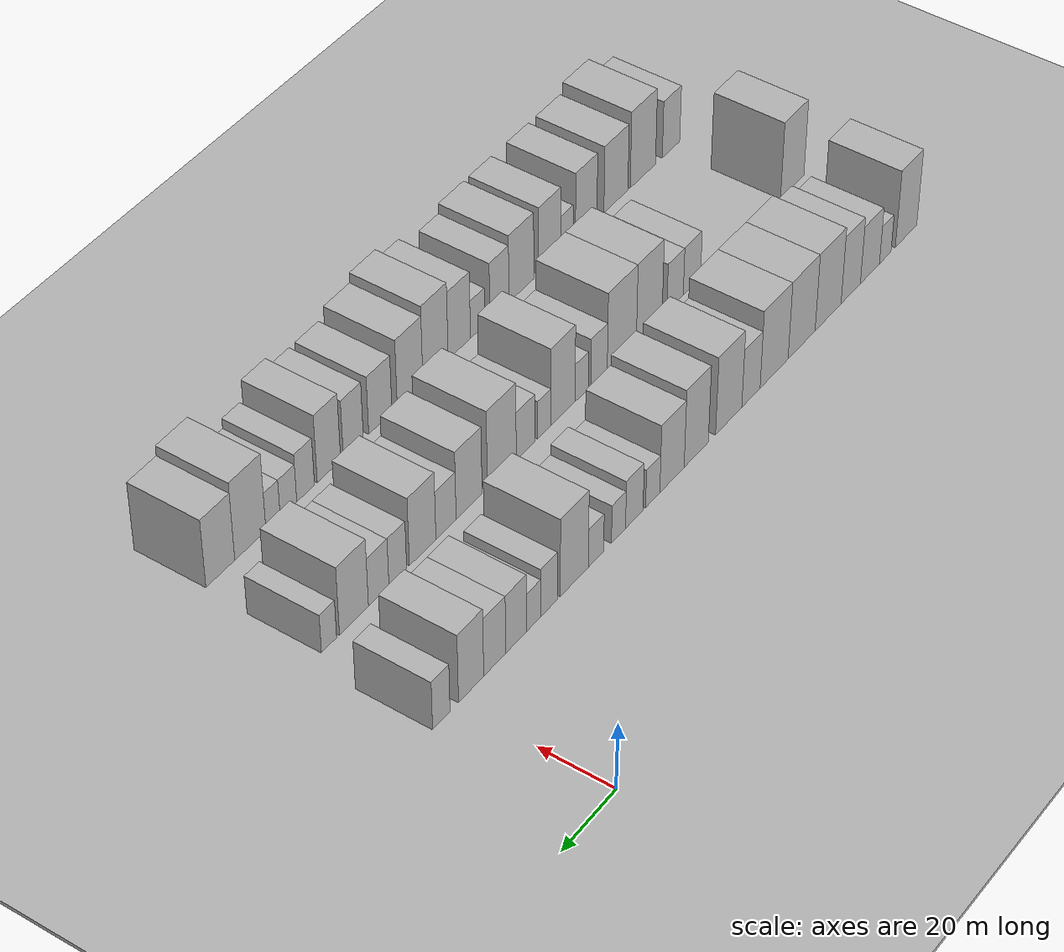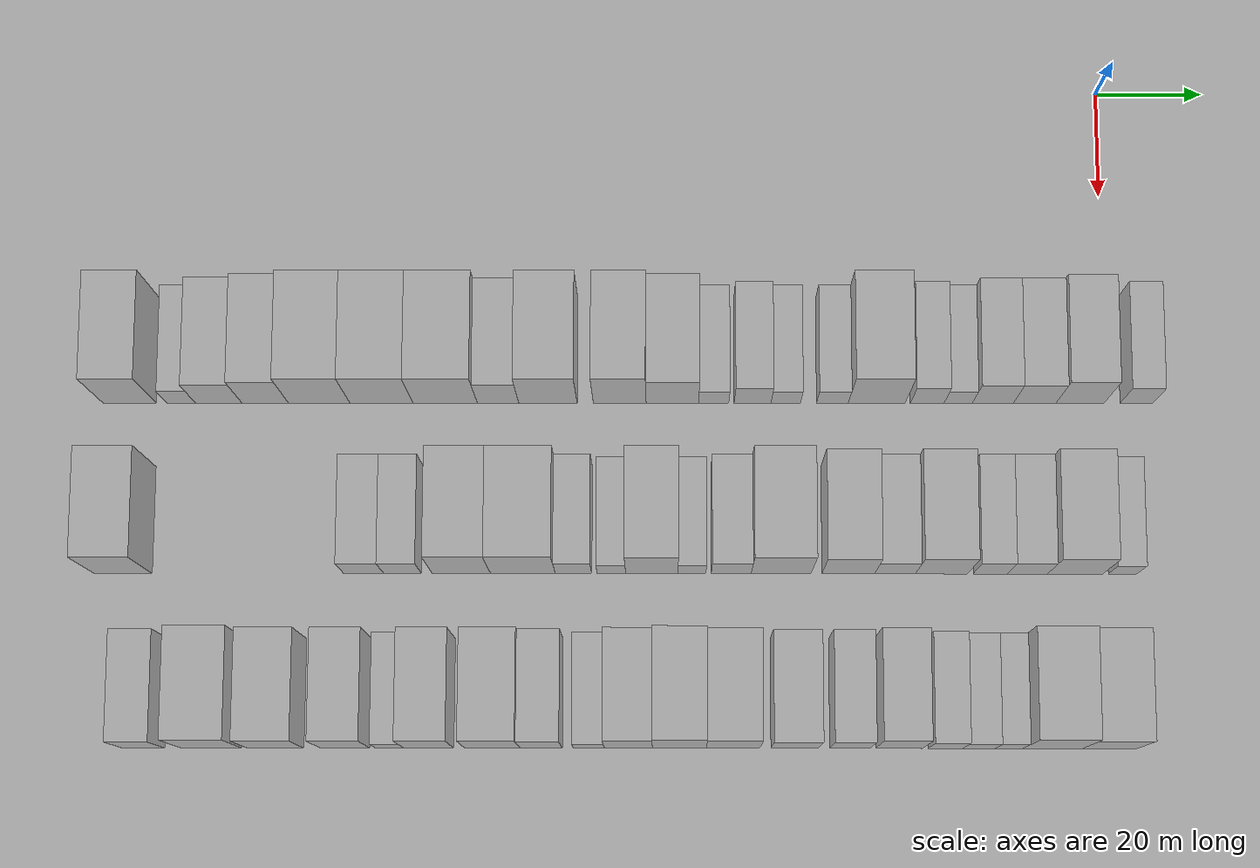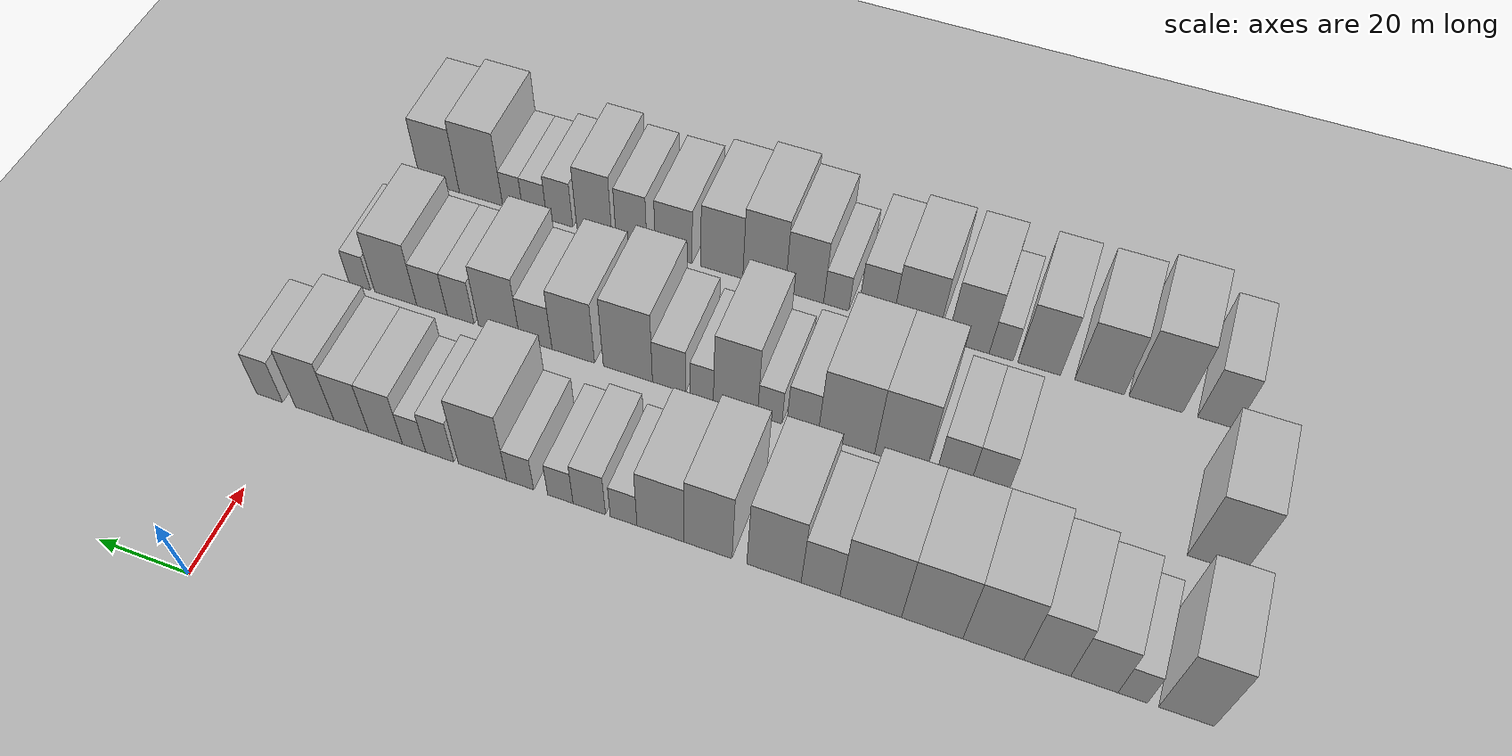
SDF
<sdf version="1.6">
 <world name="default">
  <include><name>ground_plane_1</name><uri>model://HANNAS_ground_plane</uri></include>
  <include>
   <name>ground_plane_2</name>
   <uri>model://HANNAS_ground_plane</uri>
   <pose>100 0 0  0 0 0</pose>
  </include>
  <model name="building_20">
   <static>1</static>
   <pose>50.0000 -182.1305 0 0.000000 0.000000 0.000000</pose>
   <link name="link">
    <pose>0 0 12.00 0 0 0</pose>
    <collision name="collision"><geometry><box><size>20.0000 9.9312 24.0000</size></box></geometry></collision>
    <visual name="visual">
     <cast_shadows>0</cast_shadows>
     <geometry><box><size>20.0000 9.9312 24.0000</size></box></geometry>
     <material>
      <script>
       <uri>model://HANNAS_wall/materials/scripts</uri>
       <uri>model://HANNAS_wall/materials/textures</uri>
       <name>vrc/HANNAS_wall</name>
      </script>
     </material>
    </visual>
   </link>
  </model>
  <model name="building_21">
   <static>1</static>
   <pose>50.0000 -172.4947 0 0.000000 0.000000 0.000000</pose>
   <link name="link">
    <pose>0 0 6.00 0 0 0</pose>
    <collision name="collision"><geometry><box><size>20.0000 5.3402 12.0000</size></box></geometry></collision>
    <visual name="visual">
     <cast_shadows>0</cast_shadows>
     <geometry><box><size>20.0000 5.3402 12.0000</size></box></geometry>
     <material>
      <script>
       <uri>model://HANNAS_wall/materials/scripts</uri>
       <uri>model://HANNAS_wall/materials/textures</uri>
       <name>vrc/HANNAS_wall</name>
      </script>
     </material>
    </visual>
   </link>
  </model>
  <model name="building_22">
   <static>1</static>
   <pose>50.0000 -165.4881 0 0.000000 0.000000 0.000000</pose>
   <link name="link">
    <pose>0 0 9.00 0 0 0</pose>
    <collision name="collision"><geometry><box><size>20.0000 8.6730 18.0000</size></box></geometry></collision>
    <visual name="visual">
     <cast_shadows>0</cast_shadows>
     <geometry><box><size>20.0000 8.6730 18.0000</size></box></geometry>
     <material>
      <script>
       <uri>model://HANNAS_wall/materials/scripts</uri>
       <uri>model://HANNAS_wall/materials/textures</uri>
       <name>vrc/HANNAS_wall</name>
      </script>
     </material>
    </visual>
   </link>
  </model>
  <model name="building_23">
   <static>1</static>
   <pose>50.0000 -156.8079 0 0.000000 0.000000 0.000000</pose>
   <link name="link">
    <pose>0 0 10.50 0 0 0</pose>
    <collision name="collision"><geometry><box><size>20.0000 8.6874 21.0000</size></box></geometry></collision>
    <visual name="visual">
     <cast_shadows>0</cast_shadows>
     <geometry><box><size>20.0000 8.6874 21.0000</size></box></geometry>
     <material>
      <script>
       <uri>model://HANNAS_wall/materials/scripts</uri>
       <uri>model://HANNAS_wall/materials/textures</uri>
       <name>vrc/HANNAS_wall</name>
      </script>
     </material>
    </visual>
   </link>
  </model>
  <model name="building_24">
   <static>1</static>
   <pose>50.0000 -146.7155 0 0.000000 0.000000 0.000000</pose>
   <link name="link">
    <pose>0 0 12.00 0 0 0</pose>
    <collision name="collision"><geometry><box><size>20.0000 11.4976 24.0000</size></box></geometry></collision>
    <visual name="visual">
     <cast_shadows>0</cast_shadows>
     <geometry><box><size>20.0000 11.4976 24.0000</size></box></geometry>
     <material>
      <script>
       <uri>model://HANNAS_wall/materials/scripts</uri>
       <uri>model://HANNAS_wall/materials/textures</uri>
       <name>vrc/HANNAS_wall</name>
      </script>
     </material>
    </visual>
   </link>
  </model>
  <model name="building_25">
   <static>1</static>
   <pose>50.0000 -135.0739 0 0.000000 0.000000 0.000000</pose>
   <link name="link">
    <pose>0 0 12.00 0 0 0</pose>
    <collision name="collision"><geometry><box><size>20.0000 11.7856 24.0000</size></box></geometry></collision>
    <visual name="visual">
     <cast_shadows>0</cast_shadows>
     <geometry><box><size>20.0000 11.7856 24.0000</size></box></geometry>
     <material>
      <script>
       <uri>model://HANNAS_wall/materials/scripts</uri>
       <uri>model://HANNAS_wall/materials/textures</uri>
       <name>vrc/HANNAS_wall</name>
      </script>
     </material>
    </visual>
   </link>
  </model>
  <model name="building_26">
   <static>1</static>
   <pose>50.0000 -123.1845 0 0.000000 0.000000 0.000000</pose>
   <link name="link">
    <pose>0 0 12.00 0 0 0</pose>
    <collision name="collision"><geometry><box><size>20.0000 11.9932 24.0000</size></box></geometry></collision>
    <visual name="visual">
     <cast_shadows>0</cast_shadows>
     <geometry><box><size>20.0000 11.9932 24.0000</size></box></geometry>
     <material>
      <script>
       <uri>model://HANNAS_wall/materials/scripts</uri>
       <uri>model://HANNAS_wall/materials/textures</uri>
       <name>vrc/HANNAS_wall</name>
      </script>
     </material>
    </visual>
   </link>
  </model>
  <model name="building_27">
   <static>1</static>
   <pose>50.0000 -113.3230 0 0.000000 0.000000 0.000000</pose>
   <link name="link">
    <pose>0 0 9.00 0 0 0</pose>
    <collision name="collision"><geometry><box><size>20.0000 7.7298 18.0000</size></box></geometry></collision>
    <visual name="visual">
     <cast_shadows>0</cast_shadows>
     <geometry><box><size>20.0000 7.7298 18.0000</size></box></geometry>
     <material>
      <script>
       <uri>model://HANNAS_wall/materials/scripts</uri>
       <uri>model://HANNAS_wall/materials/textures</uri>
       <name>vrc/HANNAS_wall</name>
      </script>
     </material>
    </visual>
   </link>
  </model>
  <model name="building_28">
   <static>1</static>
   <pose>50.0000 -104.0030 0 0.000000 0.000000 0.000000</pose>
   <link name="link">
    <pose>0 0 12.00 0 0 0</pose>
    <collision name="collision"><geometry><box><size>20.0000 10.9103 24.0000</size></box></geometry></collision>
    <visual name="visual">
     <cast_shadows>0</cast_shadows>
     <geometry><box><size>20.0000 10.9103 24.0000</size></box></geometry>
     <material>
      <script>
       <uri>model://HANNAS_wall/materials/scripts</uri>
       <uri>model://HANNAS_wall/materials/textures</uri>
       <name>vrc/HANNAS_wall</name>
      </script>
     </material>
    </visual>
   </link>
  </model>
  <model name="building_29">
   <static>1</static>
   <pose>50.0000 -90.6180 0 0.000000 0.000000 0.000000</pose>
   <link name="link">
    <pose>0 0 12.00 0 0 0</pose>
    <collision name="collision"><geometry><box><size>20.0000 9.8597 24.0000</size></box></geometry></collision>
    <visual name="visual">
     <cast_shadows>0</cast_shadows>
     <geometry><box><size>20.0000 9.8597 24.0000</size></box></geometry>
     <material>
      <script>
       <uri>model://HANNAS_wall/materials/scripts</uri>
       <uri>model://HANNAS_wall/materials/textures</uri>
       <name>vrc/HANNAS_wall</name>
      </script>
     </material>
    </visual>
   </link>
  </model>
  <model name="building_30">
   <static>1</static>
   <pose>50.0000 -80.7948 0 0.000000 0.000000 0.000000</pose>
   <link name="link">
    <pose>0 0 10.50 0 0 0</pose>
    <collision name="collision"><geometry><box><size>20.0000 9.7866 21.0000</size></box></geometry></collision>
    <visual name="visual">
     <cast_shadows>0</cast_shadows>
     <geometry><box><size>20.0000 9.7866 21.0000</size></box></geometry>
     <material>
      <script>
       <uri>model://HANNAS_wall/materials/scripts</uri>
       <uri>model://HANNAS_wall/materials/textures</uri>
       <name>vrc/HANNAS_wall</name>
      </script>
     </material>
    </visual>
   </link>
  </model>
  <model name="building_31">
   <static>1</static>
   <pose>50.0000 -73.0840 0 0.000000 0.000000 0.000000</pose>
   <link name="link">
    <pose>0 0 6.00 0 0 0</pose>
    <collision name="collision"><geometry><box><size>20.0000 5.6350 12.0000</size></box></geometry></collision>
    <visual name="visual">
     <cast_shadows>0</cast_shadows>
     <geometry><box><size>20.0000 5.6350 12.0000</size></box></geometry>
     <material>
      <script>
       <uri>model://HANNAS_wall/materials/scripts</uri>
       <uri>model://HANNAS_wall/materials/textures</uri>
       <name>vrc/HANNAS_wall</name>
      </script>
     </material>
    </visual>
   </link>
  </model>
  <model name="building_32">
   <static>1</static>
   <pose>50.0000 -65.8188 0 0.000000 0.000000 0.000000</pose>
   <link name="link">
    <pose>0 0 7.50 0 0 0</pose>
    <collision name="collision"><geometry><box><size>20.0000 6.8953 15.0000</size></box></geometry></collision>
    <visual name="visual">
     <cast_shadows>0</cast_shadows>
     <geometry><box><size>20.0000 6.8953 15.0000</size></box></geometry>
     <material>
      <script>
       <uri>model://HANNAS_wall/materials/scripts</uri>
       <uri>model://HANNAS_wall/materials/textures</uri>
       <name>vrc/HANNAS_wall</name>
      </script>
     </material>
    </visual>
   </link>
  </model>
  <model name="building_33">
   <static>1</static>
   <pose>50.0000 -59.6312 0 0.000000 0.000000 0.000000</pose>
   <link name="link">
    <pose>0 0 6.00 0 0 0</pose>
    <collision name="collision"><geometry><box><size>20.0000 5.4799 12.0000</size></box></geometry></collision>
    <visual name="visual">
     <cast_shadows>0</cast_shadows>
     <geometry><box><size>20.0000 5.4799 12.0000</size></box></geometry>
     <material>
      <script>
       <uri>model://HANNAS_wall/materials/scripts</uri>
       <uri>model://HANNAS_wall/materials/textures</uri>
       <name>vrc/HANNAS_wall</name>
      </script>
     </material>
    </visual>
   </link>
  </model>
  <model name="building_34">
   <static>1</static>
   <pose>50.0000 -50.9362 0 0.000000 0.000000 0.000000</pose>
   <link name="link">
    <pose>0 0 6.00 0 0 0</pose>
    <collision name="collision"><geometry><box><size>20.0000 5.9099 12.0000</size></box></geometry></collision>
    <visual name="visual">
     <cast_shadows>0</cast_shadows>
     <geometry><box><size>20.0000 5.9099 12.0000</size></box></geometry>
     <material>
      <script>
       <uri>model://HANNAS_wall/materials/scripts</uri>
       <uri>model://HANNAS_wall/materials/textures</uri>
       <name>vrc/HANNAS_wall</name>
      </script>
     </material>
    </visual>
   </link>
  </model>
  <model name="building_35">
   <static>1</static>
   <pose>50.0000 -42.6697 0 0.000000 0.000000 0.000000</pose>
   <link name="link">
    <pose>0 0 12.00 0 0 0</pose>
    <collision name="collision"><geometry><box><size>20.0000 10.6231 24.0000</size></box></geometry></collision>
    <visual name="visual">
     <cast_shadows>0</cast_shadows>
     <geometry><box><size>20.0000 10.6231 24.0000</size></box></geometry>
     <material>
      <script>
       <uri>model://HANNAS_wall/materials/scripts</uri>
       <uri>model://HANNAS_wall/materials/textures</uri>
       <name>vrc/HANNAS_wall</name>
      </script>
     </material>
    </visual>
   </link>
  </model>
  <model name="building_36">
   <static>1</static>
   <pose>50.0000 -33.2216 0 0.000000 0.000000 0.000000</pose>
   <link name="link">
    <pose>0 0 7.50 0 0 0</pose>
    <collision name="collision"><geometry><box><size>20.0000 6.2732 15.0000</size></box></geometry></collision>
    <visual name="visual">
     <cast_shadows>0</cast_shadows>
     <geometry><box><size>20.0000 6.2732 15.0000</size></box></geometry>
     <material>
      <script>
       <uri>model://HANNAS_wall/materials/scripts</uri>
       <uri>model://HANNAS_wall/materials/textures</uri>
       <name>vrc/HANNAS_wall</name>
      </script>
     </material>
    </visual>
   </link>
  </model>
  <model name="building_37">
   <static>1</static>
   <pose>50.0000 -27.4517 0 0.000000 0.000000 0.000000</pose>
   <link name="link">
    <pose>0 0 6.00 0 0 0</pose>
    <collision name="collision"><geometry><box><size>20.0000 5.2666 12.0000</size></box></geometry></collision>
    <visual name="visual">
     <cast_shadows>0</cast_shadows>
     <geometry><box><size>20.0000 5.2666 12.0000</size></box></geometry>
     <material>
      <script>
       <uri>model://HANNAS_wall/materials/scripts</uri>
       <uri>model://HANNAS_wall/materials/textures</uri>
       <name>vrc/HANNAS_wall</name>
      </script>
     </material>
    </visual>
   </link>
  </model>
  <model name="building_38">
   <static>1</static>
   <pose>50.0000 -20.9841 0 0.000000 0.000000 0.000000</pose>
   <link name="link">
    <pose>0 0 9.00 0 0 0</pose>
    <collision name="collision"><geometry><box><size>20.0000 7.6684 18.0000</size></box></geometry></collision>
    <visual name="visual">
     <cast_shadows>0</cast_shadows>
     <geometry><box><size>20.0000 7.6684 18.0000</size></box></geometry>
     <material>
      <script>
       <uri>model://HANNAS_wall/materials/scripts</uri>
       <uri>model://HANNAS_wall/materials/textures</uri>
       <name>vrc/HANNAS_wall</name>
      </script>
     </material>
    </visual>
   </link>
  </model>
  <model name="building_39">
   <static>1</static>
   <pose>50.0000 -13.1733 0 0.000000 0.000000 0.000000</pose>
   <link name="link">
    <pose>0 0 9.00 0 0 0</pose>
    <collision name="collision"><geometry><box><size>20.0000 7.9532 18.0000</size></box></geometry></collision>
    <visual name="visual">
     <cast_shadows>0</cast_shadows>
     <geometry><box><size>20.0000 7.9532 18.0000</size></box></geometry>
     <material>
      <script>
       <uri>model://HANNAS_wall/materials/scripts</uri>
       <uri>model://HANNAS_wall/materials/textures</uri>
       <name>vrc/HANNAS_wall</name>
      </script>
     </material>
    </visual>
   </link>
  </model>
  <model name="building_40">
   <static>1</static>
   <pose>50.0000 -4.7007 0 0.000000 0.000000 0.000000</pose>
   <link name="link">
    <pose>0 0 10.50 0 0 0</pose>
    <collision name="collision"><geometry><box><size>20.0000 8.9920 21.0000</size></box></geometry></collision>
    <visual name="visual">
     <cast_shadows>0</cast_shadows>
     <geometry><box><size>20.0000 8.9920 21.0000</size></box></geometry>
     <material>
      <script>
       <uri>model://HANNAS_wall/materials/scripts</uri>
       <uri>model://HANNAS_wall/materials/textures</uri>
       <name>vrc/HANNAS_wall</name>
      </script>
     </material>
    </visual>
   </link>
  </model>
  <model name="building_41">
   <static>1</static>
   <pose>50.0000 5.8593 0 0.000000 0.000000 0.000000</pose>
   <link name="link">
    <pose>0 0 7.50 0 0 0</pose>
    <collision name="collision"><geometry><box><size>20.0000 6.1280 15.0000</size></box></geometry></collision>
    <visual name="visual">
     <cast_shadows>0</cast_shadows>
     <geometry><box><size>20.0000 6.1280 15.0000</size></box></geometry>
     <material>
      <script>
       <uri>model://HANNAS_wall/materials/scripts</uri>
       <uri>model://HANNAS_wall/materials/textures</uri>
       <name>vrc/HANNAS_wall</name>
      </script>
     </material>
    </visual>
   </link>
  </model>
  <model name="building_103">
   <static>1</static>
   <pose>82.0000 -182.1213 0 0.000000 0.000000 0.000000</pose>
   <link name="link">
    <pose>0 0 12.00 0 0 0</pose>
    <collision name="collision"><geometry><box><size>20.0000 10.6720 24.0000</size></box></geometry></collision>
    <visual name="visual">
     <cast_shadows>0</cast_shadows>
     <geometry><box><size>20.0000 10.6720 24.0000</size></box></geometry>
     <material>
      <script>
       <uri>model://HANNAS_wall/materials/scripts</uri>
       <uri>model://HANNAS_wall/materials/textures</uri>
       <name>vrc/HANNAS_wall</name>
      </script>
     </material>
    </visual>
   </link>
  </model>
  <model name="building_104">
   <static>1</static>
   <pose>82.0000 -137.7175 0 0.000000 0.000000 0.000000</pose>
   <link name="link">
    <pose>0 0 7.50 0 0 0</pose>
    <collision name="collision"><geometry><box><size>20.0000 7.3786 15.0000</size></box></geometry></collision>
    <visual name="visual">
     <cast_shadows>0</cast_shadows>
     <geometry><box><size>20.0000 7.3786 15.0000</size></box></geometry>
     <material>
      <script>
       <uri>model://HANNAS_wall/materials/scripts</uri>
       <uri>model://HANNAS_wall/materials/textures</uri>
       <name>vrc/HANNAS_wall</name>
      </script>
     </material>
    </visual>
   </link>
  </model>
  <model name="building_105">
   <static>1</static>
   <pose>82.0000 -130.5434 0 0.000000 0.000000 0.000000</pose>
   <link name="link">
    <pose>0 0 7.50 0 0 0</pose>
    <collision name="collision"><geometry><box><size>20.0000 6.9695 15.0000</size></box></geometry></collision>
    <visual name="visual">
     <cast_shadows>0</cast_shadows>
     <geometry><box><size>20.0000 6.9695 15.0000</size></box></geometry>
     <material>
      <script>
       <uri>model://HANNAS_wall/materials/scripts</uri>
       <uri>model://HANNAS_wall/materials/textures</uri>
       <name>vrc/HANNAS_wall</name>
      </script>
     </material>
    </visual>
   </link>
  </model>
  <model name="building_106">
   <static>1</static>
   <pose>82.0000 -119.6819 0 0.000000 0.000000 0.000000</pose>
   <link name="link">
    <pose>0 0 12.00 0 0 0</pose>
    <collision name="collision"><geometry><box><size>20.0000 10.7537 24.0000</size></box></geometry></collision>
    <visual name="visual">
     <cast_shadows>0</cast_shadows>
     <geometry><box><size>20.0000 10.7537 24.0000</size></box></geometry>
     <material>
      <script>
       <uri>model://HANNAS_wall/materials/scripts</uri>
       <uri>model://HANNAS_wall/materials/textures</uri>
       <name>vrc/HANNAS_wall</name>
      </script>
     </material>
    </visual>
   </link>
  </model>
  <model name="building_107">
   <static>1</static>
   <pose>82.0000 -108.3235 0 0.000000 0.000000 0.000000</pose>
   <link name="link">
    <pose>0 0 12.00 0 0 0</pose>
    <collision name="collision"><geometry><box><size>20.0000 11.9630 24.0000</size></box></geometry></collision>
    <visual name="visual">
     <cast_shadows>0</cast_shadows>
     <geometry><box><size>20.0000 11.9630 24.0000</size></box></geometry>
     <material>
      <script>
       <uri>model://HANNAS_wall/materials/scripts</uri>
       <uri>model://HANNAS_wall/materials/textures</uri>
       <name>vrc/HANNAS_wall</name>
      </script>
     </material>
    </visual>
   </link>
  </model>
  <model name="building_108">
   <static>1</static>
   <pose>82.0000 -98.9969 0 0.000000 0.000000 0.000000</pose>
   <link name="link">
    <pose>0 0 7.50 0 0 0</pose>
    <collision name="collision"><geometry><box><size>20.0000 6.6903 15.0000</size></box></geometry></collision>
    <visual name="visual">
     <cast_shadows>0</cast_shadows>
     <geometry><box><size>20.0000 6.6903 15.0000</size></box></geometry>
     <material>
      <script>
       <uri>model://HANNAS_wall/materials/scripts</uri>
       <uri>model://HANNAS_wall/materials/textures</uri>
       <name>vrc/HANNAS_wall</name>
      </script>
     </material>
    </visual>
   </link>
  </model>
  <model name="building_109">
   <static>1</static>
   <pose>82.0000 -92.0117 0 0.000000 0.000000 0.000000</pose>
   <link name="link">
    <pose>0 0 6.00 0 0 0</pose>
    <collision name="collision"><geometry><box><size>20.0000 5.2801 12.0000</size></box></geometry></collision>
    <visual name="visual">
     <cast_shadows>0</cast_shadows>
     <geometry><box><size>20.0000 5.2801 12.0000</size></box></geometry>
     <material>
      <script>
       <uri>model://HANNAS_wall/materials/scripts</uri>
       <uri>model://HANNAS_wall/materials/textures</uri>
       <name>vrc/HANNAS_wall</name>
      </script>
     </material>
    </visual>
   </link>
  </model>
  <model name="building_110">
   <static>1</static>
   <pose>82.0000 -84.5606 0 0.000000 0.000000 0.000000</pose>
   <link name="link">
    <pose>0 0 12.00 0 0 0</pose>
    <collision name="collision"><geometry><box><size>20.0000 9.6222 24.0000</size></box></geometry></collision>
    <visual name="visual">
     <cast_shadows>0</cast_shadows>
     <geometry><box><size>20.0000 9.6222 24.0000</size></box></geometry>
     <material>
      <script>
       <uri>model://HANNAS_wall/materials/scripts</uri>
       <uri>model://HANNAS_wall/materials/textures</uri>
       <name>vrc/HANNAS_wall</name>
      </script>
     </material>
    </visual>
   </link>
  </model>
  <model name="building_111">
   <static>1</static>
   <pose>82.0000 -77.1818 0 0.000000 0.000000 0.000000</pose>
   <link name="link">
    <pose>0 0 6.00 0 0 0</pose>
    <collision name="collision"><geometry><box><size>20.0000 5.1354 12.0000</size></box></geometry></collision>
    <visual name="visual">
     <cast_shadows>0</cast_shadows>
     <geometry><box><size>20.0000 5.1354 12.0000</size></box></geometry>
     <material>
      <script>
       <uri>model://HANNAS_wall/materials/scripts</uri>
       <uri>model://HANNAS_wall/materials/textures</uri>
       <name>vrc/HANNAS_wall</name>
      </script>
     </material>
    </visual>
   </link>
  </model>
  <model name="building_112">
   <static>1</static>
   <pose>82.0000 -69.9337 0 0.000000 0.000000 0.000000</pose>
   <link name="link">
    <pose>0 0 7.50 0 0 0</pose>
    <collision name="collision"><geometry><box><size>20.0000 7.3607 15.0000</size></box></geometry></collision>
    <visual name="visual">
     <cast_shadows>0</cast_shadows>
     <geometry><box><size>20.0000 7.3607 15.0000</size></box></geometry>
     <material>
      <script>
       <uri>model://HANNAS_wall/materials/scripts</uri>
       <uri>model://HANNAS_wall/materials/textures</uri>
       <name>vrc/HANNAS_wall</name>
      </script>
     </material>
    </visual>
   </link>
  </model>
  <model name="building_113">
   <static>1</static>
   <pose>82.0000 -60.7211 0 0.000000 0.000000 0.000000</pose>
   <link name="link">
    <pose>0 0 12.00 0 0 0</pose>
    <collision name="collision"><geometry><box><size>20.0000 11.0645 24.0000</size></box></geometry></collision>
    <visual name="visual">
     <cast_shadows>0</cast_shadows>
     <geometry><box><size>20.0000 11.0645 24.0000</size></box></geometry>
     <material>
      <script>
       <uri>model://HANNAS_wall/materials/scripts</uri>
       <uri>model://HANNAS_wall/materials/textures</uri>
       <name>vrc/HANNAS_wall</name>
      </script>
     </material>
    </visual>
   </link>
  </model>
  <model name="building_114">
   <static>1</static>
   <pose>82.0000 -48.3150 0 0.000000 0.000000 0.000000</pose>
   <link name="link">
    <pose>0 0 10.50 0 0 0</pose>
    <collision name="collision"><geometry><box><size>20.0000 9.7477 21.0000</size></box></geometry></collision>
    <visual name="visual">
     <cast_shadows>0</cast_shadows>
     <geometry><box><size>20.0000 9.7477 21.0000</size></box></geometry>
     <material>
      <script>
       <uri>model://HANNAS_wall/materials/scripts</uri>
       <uri>model://HANNAS_wall/materials/textures</uri>
       <name>vrc/HANNAS_wall</name>
      </script>
     </material>
    </visual>
   </link>
  </model>
  <model name="building_115">
   <static>1</static>
   <pose>82.0000 -39.6951 0 0.000000 0.000000 0.000000</pose>
   <link name="link">
    <pose>0 0 7.50 0 0 0</pose>
    <collision name="collision"><geometry><box><size>20.0000 7.4921 15.0000</size></box></geometry></collision>
    <visual name="visual">
     <cast_shadows>0</cast_shadows>
     <geometry><box><size>20.0000 7.4921 15.0000</size></box></geometry>
     <material>
      <script>
       <uri>model://HANNAS_wall/materials/scripts</uri>
       <uri>model://HANNAS_wall/materials/textures</uri>
       <name>vrc/HANNAS_wall</name>
      </script>
     </material>
    </visual>
   </link>
  </model>
  <model name="building_116">
   <static>1</static>
   <pose>82.0000 -31.0987 0 0.000000 0.000000 0.000000</pose>
   <link name="link">
    <pose>0 0 10.50 0 0 0</pose>
    <collision name="collision"><geometry><box><size>20.0000 9.7007 21.0000</size></box></geometry></collision>
    <visual name="visual">
     <cast_shadows>0</cast_shadows>
     <geometry><box><size>20.0000 9.7007 21.0000</size></box></geometry>
     <material>
      <script>
       <uri>model://HANNAS_wall/materials/scripts</uri>
       <uri>model://HANNAS_wall/materials/textures</uri>
       <name>vrc/HANNAS_wall</name>
      </script>
     </material>
    </visual>
   </link>
  </model>
  <model name="building_117">
   <static>1</static>
   <pose>82.0000 -22.0468 0 0.000000 0.000000 0.000000</pose>
   <link name="link">
    <pose>0 0 7.50 0 0 0</pose>
    <collision name="collision"><geometry><box><size>20.0000 6.4032 15.0000</size></box></geometry></collision>
    <visual name="visual">
     <cast_shadows>0</cast_shadows>
     <geometry><box><size>20.0000 6.4032 15.0000</size></box></geometry>
     <material>
      <script>
       <uri>model://HANNAS_wall/materials/scripts</uri>
       <uri>model://HANNAS_wall/materials/textures</uri>
       <name>vrc/HANNAS_wall</name>
      </script>
     </material>
    </visual>
   </link>
  </model>
  <model name="building_118">
   <static>1</static>
   <pose>82.0000 -15.1858 0 0.000000 0.000000 0.000000</pose>
   <link name="link">
    <pose>0 0 7.50 0 0 0</pose>
    <collision name="collision"><geometry><box><size>20.0000 7.3188 15.0000</size></box></geometry></collision>
    <visual name="visual">
     <cast_shadows>0</cast_shadows>
     <geometry><box><size>20.0000 7.3188 15.0000</size></box></geometry>
     <material>
      <script>
       <uri>model://HANNAS_wall/materials/scripts</uri>
       <uri>model://HANNAS_wall/materials/textures</uri>
       <name>vrc/HANNAS_wall</name>
      </script>
     </material>
    </visual>
   </link>
  </model>
  <model name="building_119">
   <static>1</static>
   <pose>82.0000 -6.4182 0 0.000000 0.000000 0.000000</pose>
   <link name="link">
    <pose>0 0 10.50 0 0 0</pose>
    <collision name="collision"><geometry><box><size>20.0000 10.2162 21.0000</size></box></geometry></collision>
    <visual name="visual">
     <cast_shadows>0</cast_shadows>
     <geometry><box><size>20.0000 10.2162 21.0000</size></box></geometry>
     <material>
      <script>
       <uri>model://HANNAS_wall/materials/scripts</uri>
       <uri>model://HANNAS_wall/materials/textures</uri>
       <name>vrc/HANNAS_wall</name>
      </script>
     </material>
    </visual>
   </link>
  </model>
  <model name="building_120">
   <static>1</static>
   <pose>82.0000 2.3239 0 0.000000 0.000000 0.000000</pose>
   <link name="link">
    <pose>0 0 6.00 0 0 0</pose>
    <collision name="collision"><geometry><box><size>20.0000 5.2680 12.0000</size></box></geometry></collision>
    <visual name="visual">
     <cast_shadows>0</cast_shadows>
     <geometry><box><size>20.0000 5.2680 12.0000</size></box></geometry>
     <material>
      <script>
       <uri>model://HANNAS_wall/materials/scripts</uri>
       <uri>model://HANNAS_wall/materials/textures</uri>
       <name>vrc/HANNAS_wall</name>
      </script>
     </material>
    </visual>
   </link>
  </model>
  <model name="building_182">
   <static>1</static>
   <pose>114.0000 -177.2337 0 0.000000 0.000000 0.000000</pose>
   <link name="link">
    <pose>0 0 9.00 0 0 0</pose>
    <collision name="collision"><geometry><box><size>20.0000 7.7394 18.0000</size></box></geometry></collision>
    <visual name="visual">
     <cast_shadows>0</cast_shadows>
     <geometry><box><size>20.0000 7.7394 18.0000</size></box></geometry>
     <material>
      <script>
       <uri>model://HANNAS_wall/materials/scripts</uri>
       <uri>model://HANNAS_wall/materials/textures</uri>
       <name>vrc/HANNAS_wall</name>
      </script>
     </material>
    </visual>
   </link>
  </model>
  <model name="building_183">
   <static>1</static>
   <pose>114.0000 -164.8367 0 0.000000 0.000000 0.000000</pose>
   <link name="link">
    <pose>0 0 12.00 0 0 0</pose>
    <collision name="collision"><geometry><box><size>20.0000 11.0545 24.0000</size></box></geometry></collision>
    <visual name="visual">
     <cast_shadows>0</cast_shadows>
     <geometry><box><size>20.0000 11.0545 24.0000</size></box></geometry>
     <material>
      <script>
       <uri>model://HANNAS_wall/materials/scripts</uri>
       <uri>model://HANNAS_wall/materials/textures</uri>
       <name>vrc/HANNAS_wall</name>
      </script>
     </material>
    </visual>
   </link>
  </model>
  <model name="building_184">
   <static>1</static>
   <pose>114.0000 -153.1508 0 0.000000 0.000000 0.000000</pose>
   <link name="link">
    <pose>0 0 10.50 0 0 0</pose>
    <collision name="collision"><geometry><box><size>20.0000 10.3174 21.0000</size></box></geometry></collision>
    <visual name="visual">
     <cast_shadows>0</cast_shadows>
     <geometry><box><size>20.0000 10.3174 21.0000</size></box></geometry>
     <material>
      <script>
       <uri>model://HANNAS_wall/materials/scripts</uri>
       <uri>model://HANNAS_wall/materials/textures</uri>
       <name>vrc/HANNAS_wall</name>
      </script>
     </material>
    </visual>
   </link>
  </model>
  <model name="building_185">
   <static>1</static>
   <pose>114.0000 -140.4501 0 0.000000 0.000000 0.000000</pose>
   <link name="link">
    <pose>0 0 10.50 0 0 0</pose>
    <collision name="collision"><geometry><box><size>20.0000 9.0841 21.0000</size></box></geometry></collision>
    <visual name="visual">
     <cast_shadows>0</cast_shadows>
     <geometry><box><size>20.0000 9.0841 21.0000</size></box></geometry>
     <material>
      <script>
       <uri>model://HANNAS_wall/materials/scripts</uri>
       <uri>model://HANNAS_wall/materials/textures</uri>
       <name>vrc/HANNAS_wall</name>
      </script>
     </material>
    </visual>
   </link>
  </model>
  <model name="building_186">
   <static>1</static>
   <pose>114.0000 -132.3299 0 0.000000 0.000000 0.000000</pose>
   <link name="link">
    <pose>0 0 6.00 0 0 0</pose>
    <collision name="collision"><geometry><box><size>20.0000 5.1564 12.0000</size></box></geometry></collision>
    <visual name="visual">
     <cast_shadows>0</cast_shadows>
     <geometry><box><size>20.0000 5.1564 12.0000</size></box></geometry>
     <material>
      <script>
       <uri>model://HANNAS_wall/materials/scripts</uri>
       <uri>model://HANNAS_wall/materials/textures</uri>
       <name>vrc/HANNAS_wall</name>
      </script>
     </material>
    </visual>
   </link>
  </model>
  <model name="building_187">
   <static>1</static>
   <pose>114.0000 -125.1985 0 0.000000 0.000000 0.000000</pose>
   <link name="link">
    <pose>0 0 10.50 0 0 0</pose>
    <collision name="collision"><geometry><box><size>20.0000 9.1065 21.0000</size></box></geometry></collision>
    <visual name="visual">
     <cast_shadows>0</cast_shadows>
     <geometry><box><size>20.0000 9.1065 21.0000</size></box></geometry>
     <material>
      <script>
       <uri>model://HANNAS_wall/materials/scripts</uri>
       <uri>model://HANNAS_wall/materials/textures</uri>
       <name>vrc/HANNAS_wall</name>
      </script>
     </material>
    </visual>
   </link>
  </model>
  <model name="building_188">
   <static>1</static>
   <pose>114.0000 -113.5858 0 0.000000 0.000000 0.000000</pose>
   <link name="link">
    <pose>0 0 10.50 0 0 0</pose>
    <collision name="collision"><geometry><box><size>20.0000 10.1189 21.0000</size></box></geometry></collision>
    <visual name="visual">
     <cast_shadows>0</cast_shadows>
     <geometry><box><size>20.0000 10.1189 21.0000</size></box></geometry>
     <material>
      <script>
       <uri>model://HANNAS_wall/materials/scripts</uri>
       <uri>model://HANNAS_wall/materials/textures</uri>
       <name>vrc/HANNAS_wall</name>
      </script>
     </material>
    </visual>
   </link>
  </model>
  <model name="building_189">
   <static>1</static>
   <pose>114.0000 -104.6871 0 0.000000 0.000000 0.000000</pose>
   <link name="link">
    <pose>0 0 9.00 0 0 0</pose>
    <collision name="collision"><geometry><box><size>20.0000 7.6784 18.0000</size></box></geometry></collision>
    <visual name="visual">
     <cast_shadows>0</cast_shadows>
     <geometry><box><size>20.0000 7.6784 18.0000</size></box></geometry>
     <material>
      <script>
       <uri>model://HANNAS_wall/materials/scripts</uri>
       <uri>model://HANNAS_wall/materials/textures</uri>
       <name>vrc/HANNAS_wall</name>
      </script>
     </material>
    </visual>
   </link>
  </model>
  <model name="building_190">
   <static>1</static>
   <pose>114.0000 -96.0028 0 0.000000 0.000000 0.000000</pose>
   <link name="link">
    <pose>0 0 6.00 0 0 0</pose>
    <collision name="collision"><geometry><box><size>20.0000 5.6902 12.0000</size></box></geometry></collision>
    <visual name="visual">
     <cast_shadows>0</cast_shadows>
     <geometry><box><size>20.0000 5.6902 12.0000</size></box></geometry>
     <material>
      <script>
       <uri>model://HANNAS_wall/materials/scripts</uri>
       <uri>model://HANNAS_wall/materials/textures</uri>
       <name>vrc/HANNAS_wall</name>
      </script>
     </material>
    </visual>
   </link>
  </model>
  <model name="building_191">
   <static>1</static>
   <pose>114.0000 -88.7873 0 0.000000 0.000000 0.000000</pose>
   <link name="link">
    <pose>0 0 10.50 0 0 0</pose>
    <collision name="collision"><geometry><box><size>20.0000 8.7409 21.0000</size></box></geometry></collision>
    <visual name="visual">
     <cast_shadows>0</cast_shadows>
     <geometry><box><size>20.0000 8.7409 21.0000</size></box></geometry>
     <material>
      <script>
       <uri>model://HANNAS_wall/materials/scripts</uri>
       <uri>model://HANNAS_wall/materials/textures</uri>
       <name>vrc/HANNAS_wall</name>
      </script>
     </material>
    </visual>
   </link>
  </model>
  <model name="building_192">
   <static>1</static>
   <pose>114.0000 -79.5220 0 0.000000 0.000000 0.000000</pose>
   <link name="link">
    <pose>0 0 12.00 0 0 0</pose>
    <collision name="collision"><geometry><box><size>20.0000 9.7895 24.0000</size></box></geometry></collision>
    <visual name="visual">
     <cast_shadows>0</cast_shadows>
     <geometry><box><size>20.0000 9.7895 24.0000</size></box></geometry>
     <material>
      <script>
       <uri>model://HANNAS_wall/materials/scripts</uri>
       <uri>model://HANNAS_wall/materials/textures</uri>
       <name>vrc/HANNAS_wall</name>
      </script>
     </material>
    </visual>
   </link>
  </model>
  <model name="building_193">
   <static>1</static>
   <pose>114.0000 -69.7212 0 0.000000 0.000000 0.000000</pose>
   <link name="link">
    <pose>0 0 10.50 0 0 0</pose>
    <collision name="collision"><geometry><box><size>20.0000 9.8122 21.0000</size></box></geometry></collision>
    <visual name="visual">
     <cast_shadows>0</cast_shadows>
     <geometry><box><size>20.0000 9.8122 21.0000</size></box></geometry>
     <material>
      <script>
       <uri>model://HANNAS_wall/materials/scripts</uri>
       <uri>model://HANNAS_wall/materials/textures</uri>
       <name>vrc/HANNAS_wall</name>
      </script>
     </material>
    </visual>
   </link>
  </model>
  <model name="building_194">
   <static>1</static>
   <pose>114.0000 -58.4491 0 0.000000 0.000000 0.000000</pose>
   <link name="link">
    <pose>0 0 9.00 0 0 0</pose>
    <collision name="collision"><geometry><box><size>20.0000 8.7319 18.0000</size></box></geometry></collision>
    <visual name="visual">
     <cast_shadows>0</cast_shadows>
     <geometry><box><size>20.0000 8.7319 18.0000</size></box></geometry>
     <material>
      <script>
       <uri>model://HANNAS_wall/materials/scripts</uri>
       <uri>model://HANNAS_wall/materials/textures</uri>
       <name>vrc/HANNAS_wall</name>
      </script>
     </material>
    </visual>
   </link>
  </model>
  <model name="building_195">
   <static>1</static>
   <pose>114.0000 -48.3860 0 0.000000 0.000000 0.000000</pose>
   <link name="link">
    <pose>0 0 9.00 0 0 0</pose>
    <collision name="collision"><geometry><box><size>20.0000 7.3944 18.0000</size></box></geometry></collision>
    <visual name="visual">
     <cast_shadows>0</cast_shadows>
     <geometry><box><size>20.0000 7.3944 18.0000</size></box></geometry>
     <material>
      <script>
       <uri>model://HANNAS_wall/materials/scripts</uri>
       <uri>model://HANNAS_wall/materials/textures</uri>
       <name>vrc/HANNAS_wall</name>
      </script>
     </material>
    </visual>
   </link>
  </model>
  <model name="building_196">
   <static>1</static>
   <pose>114.0000 -39.4113 0 0.000000 0.000000 0.000000</pose>
   <link name="link">
    <pose>0 0 10.50 0 0 0</pose>
    <collision name="collision"><geometry><box><size>20.0000 8.5551 21.0000</size></box></geometry></collision>
    <visual name="visual">
     <cast_shadows>0</cast_shadows>
     <geometry><box><size>20.0000 8.5551 21.0000</size></box></geometry>
     <material>
      <script>
       <uri>model://HANNAS_wall/materials/scripts</uri>
       <uri>model://HANNAS_wall/materials/textures</uri>
       <name>vrc/HANNAS_wall</name>
      </script>
     </material>
    </visual>
   </link>
  </model>
  <model name="building_197">
   <static>1</static>
   <pose>114.0000 -30.9475 0 0.000000 0.000000 0.000000</pose>
   <link name="link">
    <pose>0 0 7.50 0 0 0</pose>
    <collision name="collision"><geometry><box><size>20.0000 6.3724 15.0000</size></box></geometry></collision>
    <visual name="visual">
     <cast_shadows>0</cast_shadows>
     <geometry><box><size>20.0000 6.3724 15.0000</size></box></geometry>
     <material>
      <script>
       <uri>model://HANNAS_wall/materials/scripts</uri>
       <uri>model://HANNAS_wall/materials/textures</uri>
       <name>vrc/HANNAS_wall</name>
      </script>
     </material>
    </visual>
   </link>
  </model>
  <model name="building_198">
   <static>1</static>
   <pose>114.0000 -24.8106 0 0.000000 0.000000 0.000000</pose>
   <link name="link">
    <pose>0 0 6.00 0 0 0</pose>
    <collision name="collision"><geometry><box><size>20.0000 5.9015 12.0000</size></box></geometry></collision>
    <visual name="visual">
     <cast_shadows>0</cast_shadows>
     <geometry><box><size>20.0000 5.9015 12.0000</size></box></geometry>
     <material>
      <script>
       <uri>model://HANNAS_wall/materials/scripts</uri>
       <uri>model://HANNAS_wall/materials/textures</uri>
       <name>vrc/HANNAS_wall</name>
      </script>
     </material>
    </visual>
   </link>
  </model>
  <model name="building_199">
   <static>1</static>
   <pose>114.0000 -19.3320 0 0.000000 0.000000 0.000000</pose>
   <link name="link">
    <pose>0 0 6.00 0 0 0</pose>
    <collision name="collision"><geometry><box><size>20.0000 5.0557 12.0000</size></box></geometry></collision>
    <visual name="visual">
     <cast_shadows>0</cast_shadows>
     <geometry><box><size>20.0000 5.0557 12.0000</size></box></geometry>
     <material>
      <script>
       <uri>model://HANNAS_wall/materials/scripts</uri>
       <uri>model://HANNAS_wall/materials/textures</uri>
       <name>vrc/HANNAS_wall</name>
      </script>
     </material>
    </visual>
   </link>
  </model>
  <model name="building_200">
   <static>1</static>
   <pose>114.0000 -11.3548 0 0.000000 0.000000 0.000000</pose>
   <link name="link">
    <pose>0 0 12.00 0 0 0</pose>
    <collision name="collision"><geometry><box><size>20.0000 10.8987 24.0000</size></box></geometry></collision>
    <visual name="visual">
     <cast_shadows>0</cast_shadows>
     <geometry><box><size>20.0000 10.8987 24.0000</size></box></geometry>
     <material>
      <script>
       <uri>model://HANNAS_wall/materials/scripts</uri>
       <uri>model://HANNAS_wall/materials/textures</uri>
       <name>vrc/HANNAS_wall</name>
      </script>
     </material>
    </visual>
   </link>
  </model>
  <model name="building_201">
   <static>1</static>
   <pose>114.0000 -0.9231 0 0.000000 0.000000 0.000000</pose>
   <link name="link">
    <pose>0 0 10.50 0 0 0</pose>
    <collision name="collision"><geometry><box><size>20.0000 9.9648 21.0000</size></box></geometry></collision>
    <visual name="visual">
     <cast_shadows>0</cast_shadows>
     <geometry><box><size>20.0000 9.9648 21.0000</size></box></geometry>
     <material>
      <script>
       <uri>model://HANNAS_wall/materials/scripts</uri>
       <uri>model://HANNAS_wall/materials/textures</uri>
       <name>vrc/HANNAS_wall</name>
      </script>
     </material>
    </visual>
   </link>
  </model>
 </world>
</sdf>
